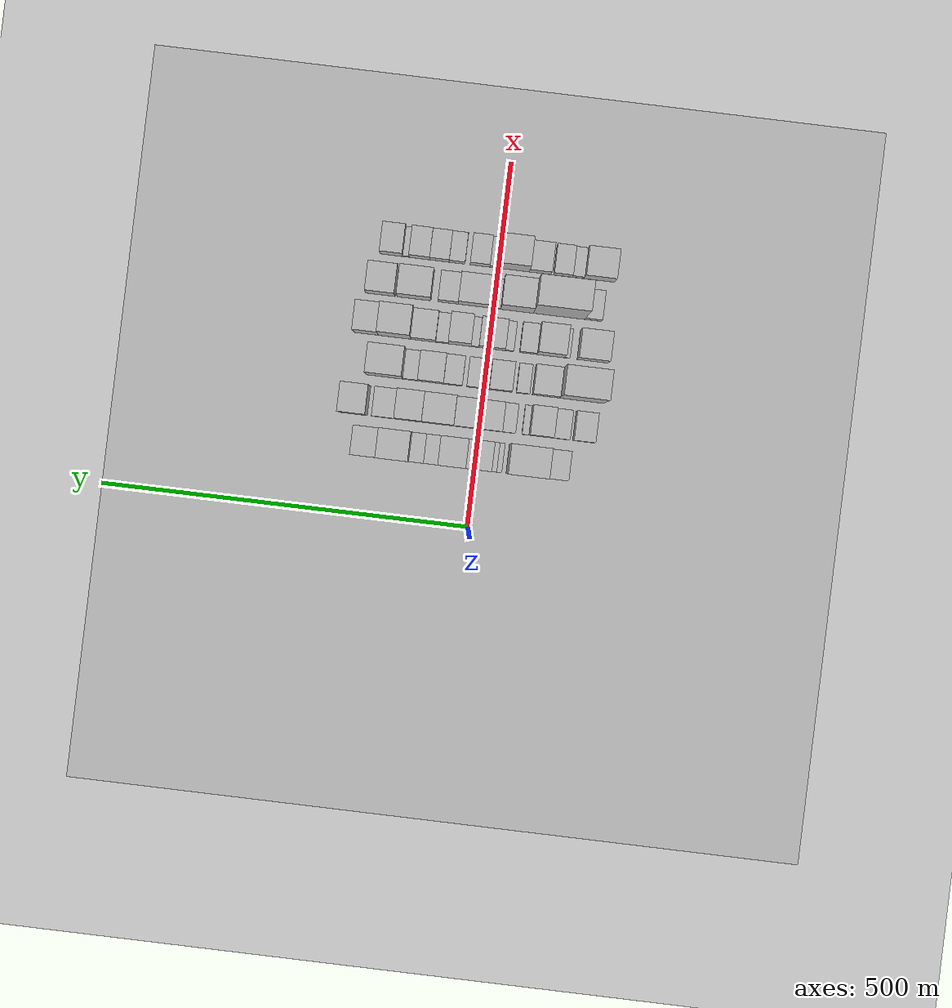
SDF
<sdf version="1.6">
 <world name="default">
  <include><name>ground_plane_1</name><uri>model://HANNAS_ground_plane</uri></include>
  <include>
   <name>ground_plane_2</name>
   <uri>model://HANNAS_ground_plane</uri>
   <pose>100 0 0  0 0 0</pose>
  </include>
  <model name="building_18">
   <static>1</static>
   <pose>100.0000 -111.8447 0 0.000000 0.000000 0.000000</pose>
   <link name="link">
    <pose>0 0 28.50 0 0 0</pose>
    <collision name="collision"><geometry><box><size>40.0000 29.5414 57.0000</size></box></geometry></collision>
    <visual name="visual">
     <cast_shadows>0</cast_shadows>
     <geometry><box><size>40.0000 29.5414 57.0000</size></box></geometry>
     <material>
      <script>
       <uri>model://HANNAS_wall/materials/scripts</uri>
       <uri>model://HANNAS_wall/materials/textures</uri>
       <name>vrc/HANNAS_wall</name>
      </script>
     </material>
    </visual>
   </link>
  </model>
  <model name="building_19">
   <static>1</static>
   <pose>100.0000 -69.9653 0 0.000000 0.000000 0.000000</pose>
   <link name="link">
    <pose>0 0 87.00 0 0 0</pose>
    <collision name="collision"><geometry><box><size>40.0000 54.2176 174.0000</size></box></geometry></collision>
    <visual name="visual">
     <cast_shadows>0</cast_shadows>
     <geometry><box><size>40.0000 54.2176 174.0000</size></box></geometry>
     <material>
      <script>
       <uri>model://HANNAS_wall/materials/scripts</uri>
       <uri>model://HANNAS_wall/materials/textures</uri>
       <name>vrc/HANNAS_wall</name>
      </script>
     </material>
    </visual>
   </link>
  </model>
  <model name="building_20">
   <static>1</static>
   <pose>100.0000 -33.4122 0 0.000000 0.000000 0.000000</pose>
   <link name="link">
    <pose>0 0 7.50 0 0 0</pose>
    <collision name="collision"><geometry><box><size>40.0000 6.8886 15.0000</size></box></geometry></collision>
    <visual name="visual">
     <cast_shadows>0</cast_shadows>
     <geometry><box><size>40.0000 6.8886 15.0000</size></box></geometry>
     <material>
      <script>
       <uri>model://HANNAS_wall/materials/scripts</uri>
       <uri>model://HANNAS_wall/materials/textures</uri>
       <name>vrc/HANNAS_wall</name>
      </script>
     </material>
    </visual>
   </link>
  </model>
  <model name="building_21">
   <static>1</static>
   <pose>100.0000 -26.3233 0 0.000000 0.000000 0.000000</pose>
   <link name="link">
    <pose>0 0 7.50 0 0 0</pose>
    <collision name="collision"><geometry><box><size>40.0000 7.2892 15.0000</size></box></geometry></collision>
    <visual name="visual">
     <cast_shadows>0</cast_shadows>
     <geometry><box><size>40.0000 7.2892 15.0000</size></box></geometry>
     <material>
      <script>
       <uri>model://HANNAS_wall/materials/scripts</uri>
       <uri>model://HANNAS_wall/materials/textures</uri>
       <name>vrc/HANNAS_wall</name>
      </script>
     </material>
    </visual>
   </link>
  </model>
  <model name="building_22">
   <static>1</static>
   <pose>100.0000 -5.1696 0 0.000000 0.000000 0.000000</pose>
   <link name="link">
    <pose>0 0 30.00 0 0 0</pose>
    <collision name="collision"><geometry><box><size>40.0000 35.0181 60.0000</size></box></geometry></collision>
    <visual name="visual">
     <cast_shadows>0</cast_shadows>
     <geometry><box><size>40.0000 35.0181 60.0000</size></box></geometry>
     <material>
      <script>
       <uri>model://HANNAS_wall/materials/scripts</uri>
       <uri>model://HANNAS_wall/materials/textures</uri>
       <name>vrc/HANNAS_wall</name>
      </script>
     </material>
    </visual>
   </link>
  </model>
  <model name="building_23">
   <static>1</static>
   <pose>100.0000 31.2205 0 0.000000 0.000000 0.000000</pose>
   <link name="link">
    <pose>0 0 37.50 0 0 0</pose>
    <collision name="collision"><geometry><box><size>40.0000 37.7620 75.0000</size></box></geometry></collision>
    <visual name="visual">
     <cast_shadows>0</cast_shadows>
     <geometry><box><size>40.0000 37.7620 75.0000</size></box></geometry>
     <material>
      <script>
       <uri>model://HANNAS_wall/materials/scripts</uri>
       <uri>model://HANNAS_wall/materials/textures</uri>
       <name>vrc/HANNAS_wall</name>
      </script>
     </material>
    </visual>
   </link>
  </model>
  <model name="building_24">
   <static>1</static>
   <pose>100.0000 59.9034 0 0.000000 0.000000 0.000000</pose>
   <link name="link">
    <pose>0 0 18.00 0 0 0</pose>
    <collision name="collision"><geometry><box><size>40.0000 19.6038 36.0000</size></box></geometry></collision>
    <visual name="visual">
     <cast_shadows>0</cast_shadows>
     <geometry><box><size>40.0000 19.6038 36.0000</size></box></geometry>
     <material>
      <script>
       <uri>model://HANNAS_wall/materials/scripts</uri>
       <uri>model://HANNAS_wall/materials/textures</uri>
       <name>vrc/HANNAS_wall</name>
      </script>
     </material>
    </visual>
   </link>
  </model>
  <model name="building_25">
   <static>1</static>
   <pose>100.0000 79.6964 0 0.000000 0.000000 0.000000</pose>
   <link name="link">
    <pose>0 0 18.00 0 0 0</pose>
    <collision name="collision"><geometry><box><size>40.0000 19.9822 36.0000</size></box></geometry></collision>
    <visual name="visual">
     <cast_shadows>0</cast_shadows>
     <geometry><box><size>40.0000 19.9822 36.0000</size></box></geometry>
     <material>
      <script>
       <uri>model://HANNAS_wall/materials/scripts</uri>
       <uri>model://HANNAS_wall/materials/textures</uri>
       <name>vrc/HANNAS_wall</name>
      </script>
     </material>
    </visual>
   </link>
  </model>
  <model name="building_26">
   <static>1</static>
   <pose>100.0000 111.3581 0 0.000000 0.000000 0.000000</pose>
   <link name="link">
    <pose>0 0 61.50 0 0 0</pose>
    <collision name="collision"><geometry><box><size>40.0000 43.3412 123.0000</size></box></geometry></collision>
    <visual name="visual">
     <cast_shadows>0</cast_shadows>
     <geometry><box><size>40.0000 43.3412 123.0000</size></box></geometry>
     <material>
      <script>
       <uri>model://HANNAS_wall/materials/scripts</uri>
       <uri>model://HANNAS_wall/materials/textures</uri>
       <name>vrc/HANNAS_wall</name>
      </script>
     </material>
    </visual>
   </link>
  </model>
  <model name="building_27">
   <static>1</static>
   <pose>100.0000 150.9429 0 0.000000 0.000000 0.000000</pose>
   <link name="link">
    <pose>0 0 31.50 0 0 0</pose>
    <collision name="collision"><geometry><box><size>40.0000 35.8284 63.0000</size></box></geometry></collision>
    <visual name="visual">
     <cast_shadows>0</cast_shadows>
     <geometry><box><size>40.0000 35.8284 63.0000</size></box></geometry>
     <material>
      <script>
       <uri>model://HANNAS_wall/materials/scripts</uri>
       <uri>model://HANNAS_wall/materials/textures</uri>
       <name>vrc/HANNAS_wall</name>
      </script>
     </material>
    </visual>
   </link>
  </model>
  <model name="building_72">
   <static>1</static>
   <pose>155.0000 -141.9587 0 0.000000 0.000000 0.000000</pose>
   <link name="link">
    <pose>0 0 27.00 0 0 0</pose>
    <collision name="collision"><geometry><box><size>40.0000 29.1791 54.0000</size></box></geometry></collision>
    <visual name="visual">
     <cast_shadows>0</cast_shadows>
     <geometry><box><size>40.0000 29.1791 54.0000</size></box></geometry>
     <material>
      <script>
       <uri>model://HANNAS_wall/materials/scripts</uri>
       <uri>model://HANNAS_wall/materials/textures</uri>
       <name>vrc/HANNAS_wall</name>
      </script>
     </material>
    </visual>
   </link>
  </model>
  <model name="building_73">
   <static>1</static>
   <pose>155.0000 -110.8235 0 0.000000 0.000000 0.000000</pose>
   <link name="link">
    <pose>0 0 22.50 0 0 0</pose>
    <collision name="collision"><geometry><box><size>40.0000 23.0912 45.0000</size></box></geometry></collision>
    <visual name="visual">
     <cast_shadows>0</cast_shadows>
     <geometry><box><size>40.0000 23.0912 45.0000</size></box></geometry>
     <material>
      <script>
       <uri>model://HANNAS_wall/materials/scripts</uri>
       <uri>model://HANNAS_wall/materials/textures</uri>
       <name>vrc/HANNAS_wall</name>
      </script>
     </material>
    </visual>
   </link>
  </model>
  <model name="building_74">
   <static>1</static>
   <pose>155.0000 -83.1987 0 0.000000 0.000000 0.000000</pose>
   <link name="link">
    <pose>0 0 49.50 0 0 0</pose>
    <collision name="collision"><geometry><box><size>40.0000 32.1584 99.0000</size></box></geometry></collision>
    <visual name="visual">
     <cast_shadows>0</cast_shadows>
     <geometry><box><size>40.0000 32.1584 99.0000</size></box></geometry>
     <material>
      <script>
       <uri>model://HANNAS_wall/materials/scripts</uri>
       <uri>model://HANNAS_wall/materials/textures</uri>
       <name>vrc/HANNAS_wall</name>
      </script>
     </material>
    </visual>
   </link>
  </model>
  <model name="building_75">
   <static>1</static>
   <pose>155.0000 -62.4927 0 0.000000 0.000000 0.000000</pose>
   <link name="link">
    <pose>0 0 10.50 0 0 0</pose>
    <collision name="collision"><geometry><box><size>40.0000 9.2536 21.0000</size></box></geometry></collision>
    <visual name="visual">
     <cast_shadows>0</cast_shadows>
     <geometry><box><size>40.0000 9.2536 21.0000</size></box></geometry>
     <material>
      <script>
       <uri>model://HANNAS_wall/materials/scripts</uri>
       <uri>model://HANNAS_wall/materials/textures</uri>
       <name>vrc/HANNAS_wall</name>
      </script>
     </material>
    </visual>
   </link>
  </model>
  <model name="building_76">
   <static>1</static>
   <pose>155.0000 -39.8707 0 0.000000 0.000000 0.000000</pose>
   <link name="link">
    <pose>0 0 15.00 0 0 0</pose>
    <collision name="collision"><geometry><box><size>40.0000 17.9904 30.0000</size></box></geometry></collision>
    <visual name="visual">
     <cast_shadows>0</cast_shadows>
     <geometry><box><size>40.0000 17.9904 30.0000</size></box></geometry>
     <material>
      <script>
       <uri>model://HANNAS_wall/materials/scripts</uri>
       <uri>model://HANNAS_wall/materials/textures</uri>
       <name>vrc/HANNAS_wall</name>
      </script>
     </material>
    </visual>
   </link>
  </model>
  <model name="building_77">
   <static>1</static>
   <pose>155.0000 -16.7138 0 0.000000 0.000000 0.000000</pose>
   <link name="link">
    <pose>0 0 25.50 0 0 0</pose>
    <collision name="collision"><geometry><box><size>40.0000 28.3234 51.0000</size></box></geometry></collision>
    <visual name="visual">
     <cast_shadows>0</cast_shadows>
     <geometry><box><size>40.0000 28.3234 51.0000</size></box></geometry>
     <material>
      <script>
       <uri>model://HANNAS_wall/materials/scripts</uri>
       <uri>model://HANNAS_wall/materials/textures</uri>
       <name>vrc/HANNAS_wall</name>
      </script>
     </material>
    </visual>
   </link>
  </model>
  <model name="building_78">
   <static>1</static>
   <pose>155.0000 17.7227 0 0.000000 0.000000 0.000000</pose>
   <link name="link">
    <pose>0 0 31.50 0 0 0</pose>
    <collision name="collision"><geometry><box><size>40.0000 34.5494 63.0000</size></box></geometry></collision>
    <visual name="visual">
     <cast_shadows>0</cast_shadows>
     <geometry><box><size>40.0000 34.5494 63.0000</size></box></geometry>
     <material>
      <script>
       <uri>model://HANNAS_wall/materials/scripts</uri>
       <uri>model://HANNAS_wall/materials/textures</uri>
       <name>vrc/HANNAS_wall</name>
      </script>
     </material>
    </visual>
   </link>
  </model>
  <model name="building_79">
   <static>1</static>
   <pose>155.0000 56.5482 0 0.000000 0.000000 0.000000</pose>
   <link name="link">
    <pose>0 0 54.00 0 0 0</pose>
    <collision name="collision"><geometry><box><size>40.0000 43.1017 108.0000</size></box></geometry></collision>
    <visual name="visual">
     <cast_shadows>0</cast_shadows>
     <geometry><box><size>40.0000 43.1017 108.0000</size></box></geometry>
     <material>
      <script>
       <uri>model://HANNAS_wall/materials/scripts</uri>
       <uri>model://HANNAS_wall/materials/textures</uri>
       <name>vrc/HANNAS_wall</name>
      </script>
     </material>
    </visual>
   </link>
  </model>
  <model name="building_80">
   <static>1</static>
   <pose>155.0000 96.5559 0 0.000000 0.000000 0.000000</pose>
   <link name="link">
    <pose>0 0 57.00 0 0 0</pose>
    <collision name="collision"><geometry><box><size>40.0000 36.9138 114.0000</size></box></geometry></collision>
    <visual name="visual">
     <cast_shadows>0</cast_shadows>
     <geometry><box><size>40.0000 36.9138 114.0000</size></box></geometry>
     <material>
      <script>
       <uri>model://HANNAS_wall/materials/scripts</uri>
       <uri>model://HANNAS_wall/materials/textures</uri>
       <name>vrc/HANNAS_wall</name>
      </script>
     </material>
    </visual>
   </link>
  </model>
  <model name="building_81">
   <static>1</static>
   <pose>155.0000 130.6852 0 0.000000 0.000000 0.000000</pose>
   <link name="link">
    <pose>0 0 27.00 0 0 0</pose>
    <collision name="collision"><geometry><box><size>40.0000 31.3448 54.0000</size></box></geometry></collision>
    <visual name="visual">
     <cast_shadows>0</cast_shadows>
     <geometry><box><size>40.0000 31.3448 54.0000</size></box></geometry>
     <material>
      <script>
       <uri>model://HANNAS_wall/materials/scripts</uri>
       <uri>model://HANNAS_wall/materials/textures</uri>
       <name>vrc/HANNAS_wall</name>
      </script>
     </material>
    </visual>
   </link>
  </model>
  <model name="building_82">
   <static>1</static>
   <pose>155.0000 172.1442 0 0.000000 0.000000 0.000000</pose>
   <link name="link">
    <pose>0 0 55.50 0 0 0</pose>
    <collision name="collision"><geometry><box><size>40.0000 37.5732 111.0000</size></box></geometry></collision>
    <visual name="visual">
     <cast_shadows>0</cast_shadows>
     <geometry><box><size>40.0000 37.5732 111.0000</size></box></geometry>
     <material>
      <script>
       <uri>model://HANNAS_wall/materials/scripts</uri>
       <uri>model://HANNAS_wall/materials/textures</uri>
       <name>vrc/HANNAS_wall</name>
      </script>
     </material>
    </visual>
   </link>
  </model>
  <model name="building_121">
   <static>1</static>
   <pose>210.0000 -132.1970 0 0.000000 0.000000 0.000000</pose>
   <link name="link">
    <pose>0 0 94.50 0 0 0</pose>
    <collision name="collision"><geometry><box><size>40.0000 60.2146 189.0000</size></box></geometry></collision>
    <visual name="visual">
     <cast_shadows>0</cast_shadows>
     <geometry><box><size>40.0000 60.2146 189.0000</size></box></geometry>
     <material>
      <script>
       <uri>model://HANNAS_wall/materials/scripts</uri>
       <uri>model://HANNAS_wall/materials/textures</uri>
       <name>vrc/HANNAS_wall</name>
      </script>
     </material>
    </visual>
   </link>
  </model>
  <model name="building_122">
   <static>1</static>
   <pose>210.0000 -83.7476 0 0.000000 0.000000 0.000000</pose>
   <link name="link">
    <pose>0 0 36.00 0 0 0</pose>
    <collision name="collision"><geometry><box><size>40.0000 36.6844 72.0000</size></box></geometry></collision>
    <visual name="visual">
     <cast_shadows>0</cast_shadows>
     <geometry><box><size>40.0000 36.6844 72.0000</size></box></geometry>
     <material>
      <script>
       <uri>model://HANNAS_wall/materials/scripts</uri>
       <uri>model://HANNAS_wall/materials/textures</uri>
       <name>vrc/HANNAS_wall</name>
      </script>
     </material>
    </visual>
   </link>
  </model>
  <model name="building_123">
   <static>1</static>
   <pose>210.0000 -52.4311 0 0.000000 0.000000 0.000000</pose>
   <link name="link">
    <pose>0 0 15.00 0 0 0</pose>
    <collision name="collision"><geometry><box><size>40.0000 17.9485 30.0000</size></box></geometry></collision>
    <visual name="visual">
     <cast_shadows>0</cast_shadows>
     <geometry><box><size>40.0000 17.9485 30.0000</size></box></geometry>
     <material>
      <script>
       <uri>model://HANNAS_wall/materials/scripts</uri>
       <uri>model://HANNAS_wall/materials/textures</uri>
       <name>vrc/HANNAS_wall</name>
      </script>
     </material>
    </visual>
   </link>
  </model>
  <model name="building_124">
   <static>1</static>
   <pose>210.0000 -21.9474 0 0.000000 0.000000 0.000000</pose>
   <link name="link">
    <pose>0 0 27.00 0 0 0</pose>
    <collision name="collision"><geometry><box><size>40.0000 31.0190 54.0000</size></box></geometry></collision>
    <visual name="visual">
     <cast_shadows>0</cast_shadows>
     <geometry><box><size>40.0000 31.0190 54.0000</size></box></geometry>
     <material>
      <script>
       <uri>model://HANNAS_wall/materials/scripts</uri>
       <uri>model://HANNAS_wall/materials/textures</uri>
       <name>vrc/HANNAS_wall</name>
      </script>
     </material>
    </visual>
   </link>
  </model>
  <model name="building_125">
   <static>1</static>
   <pose>210.0000 -2.5361 0 0.000000 0.000000 0.000000</pose>
   <link name="link">
    <pose>0 0 9.00 0 0 0</pose>
    <collision name="collision"><geometry><box><size>40.0000 7.8035 18.0000</size></box></geometry></collision>
    <visual name="visual">
     <cast_shadows>0</cast_shadows>
     <geometry><box><size>40.0000 7.8035 18.0000</size></box></geometry>
     <material>
      <script>
       <uri>model://HANNAS_wall/materials/scripts</uri>
       <uri>model://HANNAS_wall/materials/textures</uri>
       <name>vrc/HANNAS_wall</name>
      </script>
     </material>
    </visual>
   </link>
  </model>
  <model name="building_126">
   <static>1</static>
   <pose>210.0000 12.7888 0 0.000000 0.000000 0.000000</pose>
   <link name="link">
    <pose>0 0 21.00 0 0 0</pose>
    <collision name="collision"><geometry><box><size>40.0000 22.8464 42.0000</size></box></geometry></collision>
    <visual name="visual">
     <cast_shadows>0</cast_shadows>
     <geometry><box><size>40.0000 22.8464 42.0000</size></box></geometry>
     <material>
      <script>
       <uri>model://HANNAS_wall/materials/scripts</uri>
       <uri>model://HANNAS_wall/materials/textures</uri>
       <name>vrc/HANNAS_wall</name>
      </script>
     </material>
    </visual>
   </link>
  </model>
  <model name="building_127">
   <static>1</static>
   <pose>210.0000 42.8778 0 0.000000 0.000000 0.000000</pose>
   <link name="link">
    <pose>0 0 24.00 0 0 0</pose>
    <collision name="collision"><geometry><box><size>40.0000 25.3316 48.0000</size></box></geometry></collision>
    <visual name="visual">
     <cast_shadows>0</cast_shadows>
     <geometry><box><size>40.0000 25.3316 48.0000</size></box></geometry>
     <material>
      <script>
       <uri>model://HANNAS_wall/materials/scripts</uri>
       <uri>model://HANNAS_wall/materials/textures</uri>
       <name>vrc/HANNAS_wall</name>
      </script>
     </material>
    </visual>
   </link>
  </model>
  <model name="building_128">
   <static>1</static>
   <pose>210.0000 73.1585 0 0.000000 0.000000 0.000000</pose>
   <link name="link">
    <pose>0 0 34.50 0 0 0</pose>
    <collision name="collision"><geometry><box><size>40.0000 35.2298 69.0000</size></box></geometry></collision>
    <visual name="visual">
     <cast_shadows>0</cast_shadows>
     <geometry><box><size>40.0000 35.2298 69.0000</size></box></geometry>
     <material>
      <script>
       <uri>model://HANNAS_wall/materials/scripts</uri>
       <uri>model://HANNAS_wall/materials/textures</uri>
       <name>vrc/HANNAS_wall</name>
      </script>
     </material>
    </visual>
   </link>
  </model>
  <model name="building_129">
   <static>1</static>
   <pose>210.0000 101.0013 0 0.000000 0.000000 0.000000</pose>
   <link name="link">
    <pose>0 0 18.00 0 0 0</pose>
    <collision name="collision"><geometry><box><size>40.0000 20.4558 36.0000</size></box></geometry></collision>
    <visual name="visual">
     <cast_shadows>0</cast_shadows>
     <geometry><box><size>40.0000 20.4558 36.0000</size></box></geometry>
     <material>
      <script>
       <uri>model://HANNAS_wall/materials/scripts</uri>
       <uri>model://HANNAS_wall/materials/textures</uri>
       <name>vrc/HANNAS_wall</name>
      </script>
     </material>
    </visual>
   </link>
  </model>
  <model name="building_130">
   <static>1</static>
   <pose>210.0000 135.6846 0 0.000000 0.000000 0.000000</pose>
   <link name="link">
    <pose>0 0 66.00 0 0 0</pose>
    <collision name="collision"><geometry><box><size>40.0000 48.9107 132.0000</size></box></geometry></collision>
    <visual name="visual">
     <cast_shadows>0</cast_shadows>
     <geometry><box><size>40.0000 48.9107 132.0000</size></box></geometry>
     <material>
      <script>
       <uri>model://HANNAS_wall/materials/scripts</uri>
       <uri>model://HANNAS_wall/materials/textures</uri>
       <name>vrc/HANNAS_wall</name>
      </script>
     </material>
    </visual>
   </link>
  </model>
  <model name="building_171">
   <static>1</static>
   <pose>265.0000 -141.2926 0 0.000000 0.000000 0.000000</pose>
   <link name="link">
    <pose>0 0 37.50 0 0 0</pose>
    <collision name="collision"><geometry><box><size>40.0000 42.3692 75.0000</size></box></geometry></collision>
    <visual name="visual">
     <cast_shadows>0</cast_shadows>
     <geometry><box><size>40.0000 42.3692 75.0000</size></box></geometry>
     <material>
      <script>
       <uri>model://HANNAS_wall/materials/scripts</uri>
       <uri>model://HANNAS_wall/materials/textures</uri>
       <name>vrc/HANNAS_wall</name>
      </script>
     </material>
    </visual>
   </link>
  </model>
  <model name="building_172">
   <static>1</static>
   <pose>265.0000 -106.4260 0 0.000000 0.000000 0.000000</pose>
   <link name="link">
    <pose>0 0 7.50 0 0 0</pose>
    <collision name="collision"><geometry><box><size>40.0000 7.3638 15.0000</size></box></geometry></collision>
    <visual name="visual">
     <cast_shadows>0</cast_shadows>
     <geometry><box><size>40.0000 7.3638 15.0000</size></box></geometry>
     <material>
      <script>
       <uri>model://HANNAS_wall/materials/scripts</uri>
       <uri>model://HANNAS_wall/materials/textures</uri>
       <name>vrc/HANNAS_wall</name>
      </script>
     </material>
    </visual>
   </link>
  </model>
  <model name="building_173">
   <static>1</static>
   <pose>265.0000 -83.8383 0 0.000000 0.000000 0.000000</pose>
   <link name="link">
    <pose>0 0 52.50 0 0 0</pose>
    <collision name="collision"><geometry><box><size>40.0000 37.8115 105.0000</size></box></geometry></collision>
    <visual name="visual">
     <cast_shadows>0</cast_shadows>
     <geometry><box><size>40.0000 37.8115 105.0000</size></box></geometry>
     <material>
      <script>
       <uri>model://HANNAS_wall/materials/scripts</uri>
       <uri>model://HANNAS_wall/materials/textures</uri>
       <name>vrc/HANNAS_wall</name>
      </script>
     </material>
    </visual>
   </link>
  </model>
  <model name="building_174">
   <static>1</static>
   <pose>265.0000 -53.1751 0 0.000000 0.000000 0.000000</pose>
   <link name="link">
    <pose>0 0 21.00 0 0 0</pose>
    <collision name="collision"><geometry><box><size>40.0000 23.5150 42.0000</size></box></geometry></collision>
    <visual name="visual">
     <cast_shadows>0</cast_shadows>
     <geometry><box><size>40.0000 23.5150 42.0000</size></box></geometry>
     <material>
      <script>
       <uri>model://HANNAS_wall/materials/scripts</uri>
       <uri>model://HANNAS_wall/materials/textures</uri>
       <name>vrc/HANNAS_wall</name>
      </script>
     </material>
    </visual>
   </link>
  </model>
  <model name="building_175">
   <static>1</static>
   <pose>265.0000 -27.5356 0 0.000000 0.000000 0.000000</pose>
   <link name="link">
    <pose>0 0 13.50 0 0 0</pose>
    <collision name="collision"><geometry><box><size>40.0000 11.7638 27.0000</size></box></geometry></collision>
    <visual name="visual">
     <cast_shadows>0</cast_shadows>
     <geometry><box><size>40.0000 11.7638 27.0000</size></box></geometry>
     <material>
      <script>
       <uri>model://HANNAS_wall/materials/scripts</uri>
       <uri>model://HANNAS_wall/materials/textures</uri>
       <name>vrc/HANNAS_wall</name>
      </script>
     </material>
    </visual>
   </link>
  </model>
  <model name="building_176">
   <static>1</static>
   <pose>265.0000 -3.7650 0 0.000000 0.000000 0.000000</pose>
   <link name="link">
    <pose>0 0 33.00 0 0 0</pose>
    <collision name="collision"><geometry><box><size>40.0000 35.7774 66.0000</size></box></geometry></collision>
    <visual name="visual">
     <cast_shadows>0</cast_shadows>
     <geometry><box><size>40.0000 35.7774 66.0000</size></box></geometry>
     <material>
      <script>
       <uri>model://HANNAS_wall/materials/scripts</uri>
       <uri>model://HANNAS_wall/materials/textures</uri>
       <name>vrc/HANNAS_wall</name>
      </script>
     </material>
    </visual>
   </link>
  </model>
  <model name="building_177">
   <static>1</static>
   <pose>265.0000 19.4881 0 0.000000 0.000000 0.000000</pose>
   <link name="link">
    <pose>0 0 12.00 0 0 0</pose>
    <collision name="collision"><geometry><box><size>40.0000 10.7287 24.0000</size></box></geometry></collision>
    <visual name="visual">
     <cast_shadows>0</cast_shadows>
     <geometry><box><size>40.0000 10.7287 24.0000</size></box></geometry>
     <material>
      <script>
       <uri>model://HANNAS_wall/materials/scripts</uri>
       <uri>model://HANNAS_wall/materials/textures</uri>
       <name>vrc/HANNAS_wall</name>
      </script>
     </material>
    </visual>
   </link>
  </model>
  <model name="building_178">
   <static>1</static>
   <pose>265.0000 40.2774 0 0.000000 0.000000 0.000000</pose>
   <link name="link">
    <pose>0 0 46.50 0 0 0</pose>
    <collision name="collision"><geometry><box><size>40.0000 30.8499 93.0000</size></box></geometry></collision>
    <visual name="visual">
     <cast_shadows>0</cast_shadows>
     <geometry><box><size>40.0000 30.8499 93.0000</size></box></geometry>
     <material>
      <script>
       <uri>model://HANNAS_wall/materials/scripts</uri>
       <uri>model://HANNAS_wall/materials/textures</uri>
       <name>vrc/HANNAS_wall</name>
      </script>
     </material>
    </visual>
   </link>
  </model>
  <model name="building_179">
   <static>1</static>
   <pose>265.0000 64.2702 0 0.000000 0.000000 0.000000</pose>
   <link name="link">
    <pose>0 0 16.50 0 0 0</pose>
    <collision name="collision"><geometry><box><size>40.0000 17.1357 33.0000</size></box></geometry></collision>
    <visual name="visual">
     <cast_shadows>0</cast_shadows>
     <geometry><box><size>40.0000 17.1357 33.0000</size></box></geometry>
     <material>
      <script>
       <uri>model://HANNAS_wall/materials/scripts</uri>
       <uri>model://HANNAS_wall/materials/textures</uri>
       <name>vrc/HANNAS_wall</name>
      </script>
     </material>
    </visual>
   </link>
  </model>
  <model name="building_180">
   <static>1</static>
   <pose>265.0000 89.8966 0 0.000000 0.000000 0.000000</pose>
   <link name="link">
    <pose>0 0 33.00 0 0 0</pose>
    <collision name="collision"><geometry><box><size>40.0000 34.1171 66.0000</size></box></geometry></collision>
    <visual name="visual">
     <cast_shadows>0</cast_shadows>
     <geometry><box><size>40.0000 34.1171 66.0000</size></box></geometry>
     <material>
      <script>
       <uri>model://HANNAS_wall/materials/scripts</uri>
       <uri>model://HANNAS_wall/materials/textures</uri>
       <name>vrc/HANNAS_wall</name>
      </script>
     </material>
    </visual>
   </link>
  </model>
  <model name="building_181">
   <static>1</static>
   <pose>265.0000 129.0977 0 0.000000 0.000000 0.000000</pose>
   <link name="link">
    <pose>0 0 63.00 0 0 0</pose>
    <collision name="collision"><geometry><box><size>40.0000 44.2850 126.0000</size></box></geometry></collision>
    <visual name="visual">
     <cast_shadows>0</cast_shadows>
     <geometry><box><size>40.0000 44.2850 126.0000</size></box></geometry>
     <material>
      <script>
       <uri>model://HANNAS_wall/materials/scripts</uri>
       <uri>model://HANNAS_wall/materials/textures</uri>
       <name>vrc/HANNAS_wall</name>
      </script>
     </material>
    </visual>
   </link>
  </model>
  <model name="building_182">
   <static>1</static>
   <pose>265.0000 167.9130 0 0.000000 0.000000 0.000000</pose>
   <link name="link">
    <pose>0 0 49.50 0 0 0</pose>
    <collision name="collision"><geometry><box><size>40.0000 33.3457 99.0000</size></box></geometry></collision>
    <visual name="visual">
     <cast_shadows>0</cast_shadows>
     <geometry><box><size>40.0000 33.3457 99.0000</size></box></geometry>
     <material>
      <script>
       <uri>model://HANNAS_wall/materials/scripts</uri>
       <uri>model://HANNAS_wall/materials/textures</uri>
       <name>vrc/HANNAS_wall</name>
      </script>
     </material>
    </visual>
   </link>
  </model>
  <model name="building_231">
   <static>1</static>
   <pose>320.0000 -135.2683 0 0.000000 0.000000 0.000000</pose>
   <link name="link">
    <pose>0 0 19.50 0 0 0</pose>
    <collision name="collision"><geometry><box><size>40.0000 22.9255 39.0000</size></box></geometry></collision>
    <visual name="visual">
     <cast_shadows>0</cast_shadows>
     <geometry><box><size>40.0000 22.9255 39.0000</size></box></geometry>
     <material>
      <script>
       <uri>model://HANNAS_wall/materials/scripts</uri>
       <uri>model://HANNAS_wall/materials/textures</uri>
       <name>vrc/HANNAS_wall</name>
      </script>
     </material>
    </visual>
   </link>
  </model>
  <model name="building_232">
   <static>1</static>
   <pose>320.0000 -88.7076 0 0.000000 0.000000 0.000000</pose>
   <link name="link">
    <pose>0 0 108.00 0 0 0</pose>
    <collision name="collision"><geometry><box><size>40.0000 70.1958 216.0000</size></box></geometry></collision>
    <visual name="visual">
     <cast_shadows>0</cast_shadows>
     <geometry><box><size>40.0000 70.1958 216.0000</size></box></geometry>
     <material>
      <script>
       <uri>model://HANNAS_wall/materials/scripts</uri>
       <uri>model://HANNAS_wall/materials/textures</uri>
       <name>vrc/HANNAS_wall</name>
      </script>
     </material>
    </visual>
   </link>
  </model>
  <model name="building_233">
   <static>1</static>
   <pose>320.0000 -31.2903 0 0.000000 0.000000 0.000000</pose>
   <link name="link">
    <pose>0 0 60.00 0 0 0</pose>
    <collision name="collision"><geometry><box><size>40.0000 44.6390 120.0000</size></box></geometry></collision>
    <visual name="visual">
     <cast_shadows>0</cast_shadows>
     <geometry><box><size>40.0000 44.6390 120.0000</size></box></geometry>
     <material>
      <script>
       <uri>model://HANNAS_wall/materials/scripts</uri>
       <uri>model://HANNAS_wall/materials/textures</uri>
       <name>vrc/HANNAS_wall</name>
      </script>
     </material>
    </visual>
   </link>
  </model>
  <model name="building_234">
   <static>1</static>
   <pose>320.0000 -5.9348 0 0.000000 0.000000 0.000000</pose>
   <link name="link">
    <pose>0 0 7.50 0 0 0</pose>
    <collision name="collision"><geometry><box><size>40.0000 6.0720 15.0000</size></box></geometry></collision>
    <visual name="visual">
     <cast_shadows>0</cast_shadows>
     <geometry><box><size>40.0000 6.0720 15.0000</size></box></geometry>
     <material>
      <script>
       <uri>model://HANNAS_wall/materials/scripts</uri>
       <uri>model://HANNAS_wall/materials/textures</uri>
       <name>vrc/HANNAS_wall</name>
      </script>
     </material>
    </visual>
   </link>
  </model>
  <model name="building_235">
   <static>1</static>
   <pose>320.0000 27.4405 0 0.000000 0.000000 0.000000</pose>
   <link name="link">
    <pose>0 0 39.00 0 0 0</pose>
    <collision name="collision"><geometry><box><size>40.0000 42.6786 78.0000</size></box></geometry></collision>
    <visual name="visual">
     <cast_shadows>0</cast_shadows>
     <geometry><box><size>40.0000 42.6786 78.0000</size></box></geometry>
     <material>
      <script>
       <uri>model://HANNAS_wall/materials/scripts</uri>
       <uri>model://HANNAS_wall/materials/textures</uri>
       <name>vrc/HANNAS_wall</name>
      </script>
     </material>
    </visual>
   </link>
  </model>
  <model name="building_236">
   <static>1</static>
   <pose>320.0000 62.5288 0 0.000000 0.000000 0.000000</pose>
   <link name="link">
    <pose>0 0 27.00 0 0 0</pose>
    <collision name="collision"><geometry><box><size>40.0000 27.4981 54.0000</size></box></geometry></collision>
    <visual name="visual">
     <cast_shadows>0</cast_shadows>
     <geometry><box><size>40.0000 27.4981 54.0000</size></box></geometry>
     <material>
      <script>
       <uri>model://HANNAS_wall/materials/scripts</uri>
       <uri>model://HANNAS_wall/materials/textures</uri>
       <name>vrc/HANNAS_wall</name>
      </script>
     </material>
    </visual>
   </link>
  </model>
  <model name="building_237">
   <static>1</static>
   <pose>320.0000 109.2896 0 0.000000 0.000000 0.000000</pose>
   <link name="link">
    <pose>0 0 42.00 0 0 0</pose>
    <collision name="collision"><geometry><box><size>40.0000 46.0236 84.0000</size></box></geometry></collision>
    <visual name="visual">
     <cast_shadows>0</cast_shadows>
     <geometry><box><size>40.0000 46.0236 84.0000</size></box></geometry>
     <material>
      <script>
       <uri>model://HANNAS_wall/materials/scripts</uri>
       <uri>model://HANNAS_wall/materials/textures</uri>
       <name>vrc/HANNAS_wall</name>
      </script>
     </material>
    </visual>
   </link>
  </model>
  <model name="building_238">
   <static>1</static>
   <pose>320.0000 155.2054 0 0.000000 0.000000 0.000000</pose>
   <link name="link">
    <pose>0 0 37.50 0 0 0</pose>
    <collision name="collision"><geometry><box><size>40.0000 39.8081 75.0000</size></box></geometry></collision>
    <visual name="visual">
     <cast_shadows>0</cast_shadows>
     <geometry><box><size>40.0000 39.8081 75.0000</size></box></geometry>
     <material>
      <script>
       <uri>model://HANNAS_wall/materials/scripts</uri>
       <uri>model://HANNAS_wall/materials/textures</uri>
       <name>vrc/HANNAS_wall</name>
      </script>
     </material>
    </visual>
   </link>
  </model>
  <model name="building_284">
   <static>1</static>
   <pose>375.0000 -137.2375 0 0.000000 0.000000 0.000000</pose>
   <link name="link">
    <pose>0 0 37.50 0 0 0</pose>
    <collision name="collision"><geometry><box><size>40.0000 41.5631 75.0000</size></box></geometry></collision>
    <visual name="visual">
     <cast_shadows>0</cast_shadows>
     <geometry><box><size>40.0000 41.5631 75.0000</size></box></geometry>
     <material>
      <script>
       <uri>model://HANNAS_wall/materials/scripts</uri>
       <uri>model://HANNAS_wall/materials/textures</uri>
       <name>vrc/HANNAS_wall</name>
      </script>
     </material>
    </visual>
   </link>
  </model>
  <model name="building_285">
   <static>1</static>
   <pose>375.0000 -108.3480 0 0.000000 0.000000 0.000000</pose>
   <link name="link">
    <pose>0 0 15.00 0 0 0</pose>
    <collision name="collision"><geometry><box><size>40.0000 16.2159 30.0000</size></box></geometry></collision>
    <visual name="visual">
     <cast_shadows>0</cast_shadows>
     <geometry><box><size>40.0000 16.2159 30.0000</size></box></geometry>
     <material>
      <script>
       <uri>model://HANNAS_wall/materials/scripts</uri>
       <uri>model://HANNAS_wall/materials/textures</uri>
       <name>vrc/HANNAS_wall</name>
      </script>
     </material>
    </visual>
   </link>
  </model>
  <model name="building_286">
   <static>1</static>
   <pose>375.0000 -87.3894 0 0.000000 0.000000 0.000000</pose>
   <link name="link">
    <pose>0 0 22.50 0 0 0</pose>
    <collision name="collision"><geometry><box><size>40.0000 25.7012 45.0000</size></box></geometry></collision>
    <visual name="visual">
     <cast_shadows>0</cast_shadows>
     <geometry><box><size>40.0000 25.7012 45.0000</size></box></geometry>
     <material>
      <script>
       <uri>model://HANNAS_wall/materials/scripts</uri>
       <uri>model://HANNAS_wall/materials/textures</uri>
       <name>vrc/HANNAS_wall</name>
      </script>
     </material>
    </visual>
   </link>
  </model>
  <model name="building_287">
   <static>1</static>
   <pose>375.0000 -56.5774 0 0.000000 0.000000 0.000000</pose>
   <link name="link">
    <pose>0 0 25.50 0 0 0</pose>
    <collision name="collision"><geometry><box><size>40.0000 29.9229 51.0000</size></box></geometry></collision>
    <visual name="visual">
     <cast_shadows>0</cast_shadows>
     <geometry><box><size>40.0000 29.9229 51.0000</size></box></geometry>
     <material>
      <script>
       <uri>model://HANNAS_wall/materials/scripts</uri>
       <uri>model://HANNAS_wall/materials/textures</uri>
       <name>vrc/HANNAS_wall</name>
      </script>
     </material>
    </visual>
   </link>
  </model>
  <model name="building_288">
   <static>1</static>
   <pose>375.0000 -22.2598 0 0.000000 0.000000 0.000000</pose>
   <link name="link">
    <pose>0 0 57.00 0 0 0</pose>
    <collision name="collision"><geometry><box><size>40.0000 38.7122 114.0000</size></box></geometry></collision>
    <visual name="visual">
     <cast_shadows>0</cast_shadows>
     <geometry><box><size>40.0000 38.7122 114.0000</size></box></geometry>
     <material>
      <script>
       <uri>model://HANNAS_wall/materials/scripts</uri>
       <uri>model://HANNAS_wall/materials/textures</uri>
       <name>vrc/HANNAS_wall</name>
      </script>
     </material>
    </visual>
   </link>
  </model>
  <model name="building_289">
   <static>1</static>
   <pose>375.0000 6.7772 0 0.000000 0.000000 0.000000</pose>
   <link name="link">
    <pose>0 0 13.50 0 0 0</pose>
    <collision name="collision"><geometry><box><size>40.0000 11.3620 27.0000</size></box></geometry></collision>
    <visual name="visual">
     <cast_shadows>0</cast_shadows>
     <geometry><box><size>40.0000 11.3620 27.0000</size></box></geometry>
     <material>
      <script>
       <uri>model://HANNAS_wall/materials/scripts</uri>
       <uri>model://HANNAS_wall/materials/textures</uri>
       <name>vrc/HANNAS_wall</name>
      </script>
     </material>
    </visual>
   </link>
  </model>
  <model name="building_290">
   <static>1</static>
   <pose>375.0000 25.9160 0 0.000000 0.000000 0.000000</pose>
   <link name="link">
    <pose>0 0 25.50 0 0 0</pose>
    <collision name="collision"><geometry><box><size>40.0000 26.9154 51.0000</size></box></geometry></collision>
    <visual name="visual">
     <cast_shadows>0</cast_shadows>
     <geometry><box><size>40.0000 26.9154 51.0000</size></box></geometry>
     <material>
      <script>
       <uri>model://HANNAS_wall/materials/scripts</uri>
       <uri>model://HANNAS_wall/materials/textures</uri>
       <name>vrc/HANNAS_wall</name>
      </script>
     </material>
    </visual>
   </link>
  </model>
  <model name="building_291">
   <static>1</static>
   <pose>375.0000 57.0601 0 0.000000 0.000000 0.000000</pose>
   <link name="link">
    <pose>0 0 21.00 0 0 0</pose>
    <collision name="collision"><geometry><box><size>40.0000 21.3728 42.0000</size></box></geometry></collision>
    <visual name="visual">
     <cast_shadows>0</cast_shadows>
     <geometry><box><size>40.0000 21.3728 42.0000</size></box></geometry>
     <material>
      <script>
       <uri>model://HANNAS_wall/materials/scripts</uri>
       <uri>model://HANNAS_wall/materials/textures</uri>
       <name>vrc/HANNAS_wall</name>
      </script>
     </material>
    </visual>
   </link>
  </model>
  <model name="building_292">
   <static>1</static>
   <pose>375.0000 81.0456 0 0.000000 0.000000 0.000000</pose>
   <link name="link">
    <pose>0 0 24.00 0 0 0</pose>
    <collision name="collision"><geometry><box><size>40.0000 26.5983 48.0000</size></box></geometry></collision>
    <visual name="visual">
     <cast_shadows>0</cast_shadows>
     <geometry><box><size>40.0000 26.5983 48.0000</size></box></geometry>
     <material>
      <script>
       <uri>model://HANNAS_wall/materials/scripts</uri>
       <uri>model://HANNAS_wall/materials/textures</uri>
       <name>vrc/HANNAS_wall</name>
      </script>
     </material>
    </visual>
   </link>
  </model>
  <model name="building_293">
   <static>1</static>
   <pose>375.0000 108.4516 0 0.000000 0.000000 0.000000</pose>
   <link name="link">
    <pose>0 0 27.00 0 0 0</pose>
    <collision name="collision"><geometry><box><size>40.0000 28.2137 54.0000</size></box></geometry></collision>
    <visual name="visual">
     <cast_shadows>0</cast_shadows>
     <geometry><box><size>40.0000 28.2137 54.0000</size></box></geometry>
     <material>
      <script>
       <uri>model://HANNAS_wall/materials/scripts</uri>
       <uri>model://HANNAS_wall/materials/textures</uri>
       <name>vrc/HANNAS_wall</name>
      </script>
     </material>
    </visual>
   </link>
  </model>
  <model name="building_294">
   <static>1</static>
   <pose>375.0000 126.9595 0 0.000000 0.000000 0.000000</pose>
   <link name="link">
    <pose>0 0 9.00 0 0 0</pose>
    <collision name="collision"><geometry><box><size>40.0000 8.8020 18.0000</size></box></geometry></collision>
    <visual name="visual">
     <cast_shadows>0</cast_shadows>
     <geometry><box><size>40.0000 8.8020 18.0000</size></box></geometry>
     <material>
      <script>
       <uri>model://HANNAS_wall/materials/scripts</uri>
       <uri>model://HANNAS_wall/materials/textures</uri>
       <name>vrc/HANNAS_wall</name>
      </script>
     </material>
    </visual>
   </link>
  </model>
  <model name="building_295">
   <static>1</static>
   <pose>375.0000 146.8322 0 0.000000 0.000000 0.000000</pose>
   <link name="link">
    <pose>0 0 30.00 0 0 0</pose>
    <collision name="collision"><geometry><box><size>40.0000 30.9433 60.0000</size></box></geometry></collision>
    <visual name="visual">
     <cast_shadows>0</cast_shadows>
     <geometry><box><size>40.0000 30.9433 60.0000</size></box></geometry>
     <material>
      <script>
       <uri>model://HANNAS_wall/materials/scripts</uri>
       <uri>model://HANNAS_wall/materials/textures</uri>
       <name>vrc/HANNAS_wall</name>
      </script>
     </material>
    </visual>
   </link>
  </model>
 </world>
</sdf>
